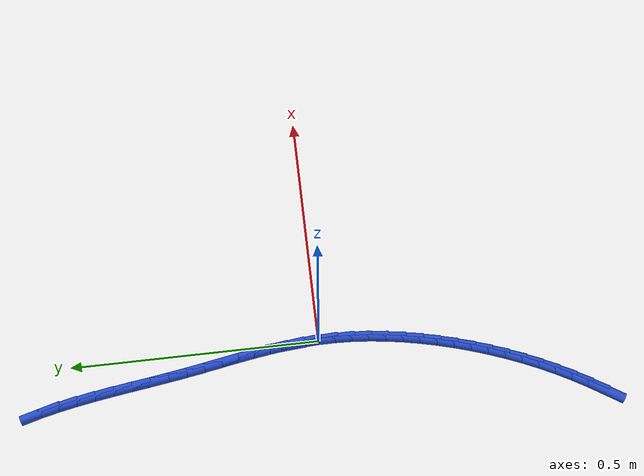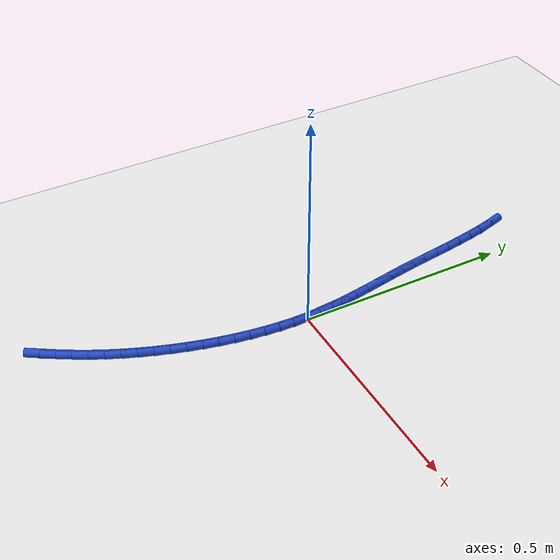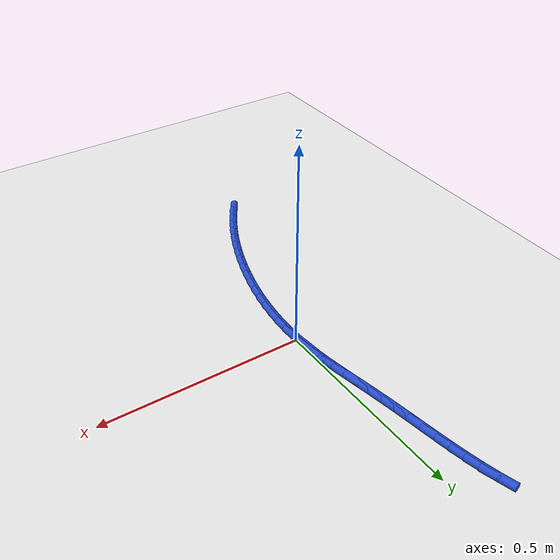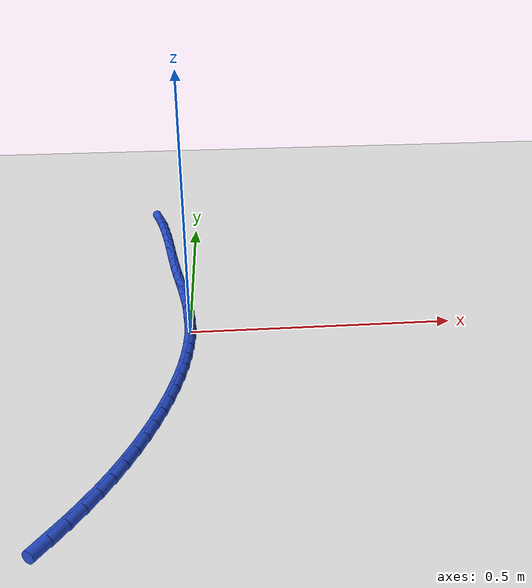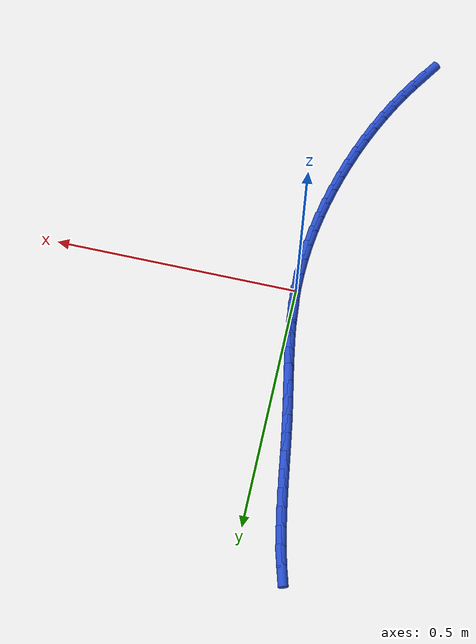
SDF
<sdf version="1.6">
 <world name="default">
  <model name="ground_plane">
   <static>1</static>
   <link name="link">
    <collision name="collision">
     <geometry><plane><normal>0 0 1</normal><size>100 100</size></plane></geometry>
     <surface><friction><ode><mu>100</mu><mu2>50</mu2></ode></friction></surface>
    </collision>
    <visual name="visual">
     <cast_shadows>0</cast_shadows>
     <geometry><plane><normal>0 0 1</normal><size>100 100</size></plane></geometry>
     <material>
      <script><uri>file://media/materials/scripts/gazebo.material</uri><name>Gazebo/WhiteGlow</name></script>
     </material>
    </visual>
   </link>
  </model>
  <model name="line">
   <link name="link_0">
    <pose>-1.0408340855860843e-17 1.3877787807814457e-17 0.01 0 1.57 -1.5174585784094434</pose>
    <collision name="collision">
     <geometry><cylinder><radius>0.01</radius><length>0.08</length></cylinder></geometry>
    </collision>
    <visual name="visual">
     <material>
      <script><name>Gazebo/Blue</name><uri>file://media/materials/scripts/gazebo.material</uri></script>
     </material>
     <geometry><cylinder><radius>0.01</radius><length>0.08</length></cylinder></geometry>
    </visual>
   </link>
   <link name="link_1">
    <pose>-0.001797787003894169 0.03367374672130932 0.01 0 1.57 -1.4763028641299707</pose>
    <collision name="collision">
     <geometry><cylinder><radius>0.01</radius><length>0.08</length></cylinder></geometry>
    </collision>
    <visual name="visual">
     <material>
      <script><name>Gazebo/Blue</name><uri>file://media/materials/scripts/gazebo.material</uri></script>
     </material>
     <geometry><cylinder><radius>0.01</radius><length>0.08</length></cylinder></geometry>
    </visual>
   </link>
   <link name="link_2">
    <pose>-0.004974677567229655 0.06719383731850173 0.01 0 1.57 -1.4429940075132388</pose>
    <collision name="collision">
     <geometry><cylinder><radius>0.01</radius><length>0.08</length></cylinder></geometry>
    </collision>
    <visual name="visual">
     <material>
      <script><name>Gazebo/Blue</name><uri>file://media/materials/scripts/gazebo.material</uri></script>
     </material>
     <geometry><cylinder><radius>0.01</radius><length>0.08</length></cylinder></geometry>
    </visual>
   </link>
   <link name="link_3">
    <pose>-0.009276868182909811 0.10067321323386505 0.01 0 1.57 -1.4178004778522653</pose>
    <collision name="collision">
     <geometry><cylinder><radius>0.01</radius><length>0.08</length></cylinder></geometry>
    </collision>
    <visual name="visual">
     <material>
      <script><name>Gazebo/Blue</name><uri>file://media/materials/scripts/gazebo.material</uri></script>
     </material>
     <geometry><cylinder><radius>0.01</radius><length>0.08</length></cylinder></geometry>
    </visual>
   </link>
   <link name="link_4">
    <pose>-0.014450555343837983 0.13422481590968718 0.01 0 1.57 -1.4007896088642688</pose>
    <collision name="collision">
     <geometry><cylinder><radius>0.01</radius><length>0.08</length></cylinder></geometry>
    </collision>
    <visual name="visual">
     <material>
      <script><name>Gazebo/Blue</name><uri>file://media/materials/scripts/gazebo.material</uri></script>
     </material>
     <geometry><cylinder><radius>0.01</radius><length>0.08</length></cylinder></geometry>
    </visual>
   </link>
   <link name="link_5">
    <pose>-0.020241935542917505 0.16796158678825582 0.01 0 1.57 -1.3918784342253012</pose>
    <collision name="collision">
     <geometry><cylinder><radius>0.01</radius><length>0.08</length></cylinder></geometry>
    </collision>
    <visual name="visual">
     <material>
      <script><name>Gazebo/Blue</name><uri>file://media/materials/scripts/gazebo.material</uri></script>
     </material>
     <geometry><cylinder><radius>0.01</radius><length>0.08</length></cylinder></geometry>
    </visual>
   </link>
   <link name="link_6">
    <pose>-0.026397205273051724 0.20199646731185883 0.01 0 1.57 -1.3908737222804748</pose>
    <collision name="collision">
     <geometry><cylinder><radius>0.01</radius><length>0.08</length></cylinder></geometry>
    </collision>
    <visual name="visual">
     <material>
      <script><name>Gazebo/Blue</name><uri>file://media/materials/scripts/gazebo.material</uri></script>
     </material>
     <geometry><cylinder><radius>0.01</radius><length>0.08</length></cylinder></geometry>
    </visual>
   </link>
   <link name="link_7">
    <pose>-0.03266256102714396 0.23644239892278401 0.01 0 1.57 -1.3974979000075152</pose>
    <collision name="collision">
     <geometry><cylinder><radius>0.01</radius><length>0.08</length></cylinder></geometry>
    </collision>
    <visual name="visual">
     <material>
      <script><name>Gazebo/Blue</name><uri>file://media/materials/scripts/gazebo.material</uri></script>
     </material>
     <geometry><cylinder><radius>0.01</radius><length>0.08</length></cylinder></geometry>
    </visual>
   </link>
   <link name="link_8">
    <pose>-0.03878419929809761 0.2714123230633193 0.01 0 1.57 -1.410540140383066</pose>
    <collision name="collision">
     <geometry><cylinder><radius>0.01</radius><length>0.08</length></cylinder></geometry>
    </collision>
    <visual name="visual">
     <material>
      <script><name>Gazebo/Blue</name><uri>file://media/materials/scripts/gazebo.material</uri></script>
     </material>
     <geometry><cylinder><radius>0.01</radius><length>0.08</length></cylinder></geometry>
    </visual>
   </link>
   <link name="link_9">
    <pose>-0.044536545742731845 0.30699920457989194 0.01 0 1.57 -1.4211945639011299</pose>
    <collision name="collision">
     <geometry><cylinder><radius>0.01</radius><length>0.08</length></cylinder></geometry>
    </collision>
    <visual name="visual">
     <material>
      <script><name>Gazebo/Blue</name><uri>file://media/materials/scripts/gazebo.material</uri></script>
     </material>
     <geometry><cylinder><radius>0.01</radius><length>0.08</length></cylinder></geometry>
    </visual>
   </link>
   <link name="link_10">
    <pose>-0.049977274686973584 0.34309556511035183 0.01 0 1.57 -1.4247883033095197</pose>
    <collision name="collision">
     <geometry><cylinder><radius>0.01</radius><length>0.08</length></cylinder></geometry>
    </collision>
    <visual name="visual">
     <material>
      <script><name>Gazebo/Blue</name><uri>file://media/materials/scripts/gazebo.material</uri></script>
     </material>
     <geometry><cylinder><radius>0.01</radius><length>0.08</length></cylinder></geometry>
    </visual>
   </link>
   <link name="link_11">
    <pose>-0.05532751325703738 0.3794782575981681 0.01 0 1.57 -1.421472245109235</pose>
    <collision name="collision">
     <geometry><cylinder><radius>0.01</radius><length>0.08</length></cylinder></geometry>
    </collision>
    <visual name="visual">
     <material>
      <script><name>Gazebo/Blue</name><uri>file://media/materials/scripts/gazebo.material</uri></script>
     </material>
     <geometry><cylinder><radius>0.01</radius><length>0.08</length></cylinder></geometry>
    </visual>
   </link>
   <link name="link_12">
    <pose>-0.06081036401106876 0.4159227370564483 0.01 0 1.57 -1.4112411787081625</pose>
    <collision name="collision">
     <geometry><cylinder><radius>0.01</radius><length>0.08</length></cylinder></geometry>
    </collision>
    <visual name="visual">
     <material>
      <script><name>Gazebo/Blue</name><uri>file://media/materials/scripts/gazebo.material</uri></script>
     </material>
     <geometry><cylinder><radius>0.01</radius><length>0.08</length></cylinder></geometry>
    </visual>
   </link>
   <link name="link_13">
    <pose>-0.06664892950721323 0.4522044584982996 0.01 0 1.57 -1.3938805285159337</pose>
    <collision name="collision">
     <geometry><cylinder><radius>0.01</radius><length>0.08</length></cylinder></geometry>
    </collision>
    <visual name="visual">
     <material>
      <script><name>Gazebo/Blue</name><uri>file://media/materials/scripts/gazebo.material</uri></script>
     </material>
     <geometry><cylinder><radius>0.01</radius><length>0.08</length></cylinder></geometry>
    </visual>
   </link>
   <link name="link_14">
    <pose>-0.07306631230361622 0.48809887693682935 0.01 0 1.57 -1.36896833246314</pose>
    <collision name="collision">
     <geometry><cylinder><radius>0.01</radius><length>0.08</length></cylinder></geometry>
    </collision>
    <visual name="visual">
     <material>
      <script><name>Gazebo/Blue</name><uri>file://media/materials/scripts/gazebo.material</uri></script>
     </material>
     <geometry><cylinder><radius>0.01</radius><length>0.08</length></cylinder></geometry>
    </visual>
   </link>
   <link name="link_15">
    <pose>-0.08028561495842329 0.5233814473851446 0.01 0 1.57 -1.3358761266931571</pose>
    <collision name="collision">
     <geometry><cylinder><radius>0.01</radius><length>0.08</length></cylinder></geometry>
    </collision>
    <visual name="visual">
     <material>
      <script><name>Gazebo/Blue</name><uri>file://media/materials/scripts/gazebo.material</uri></script>
     </material>
     <geometry><cylinder><radius>0.01</radius><length>0.08</length></cylinder></geometry>
    </visual>
   </link>
   <link name="link_16">
    <pose>-0.08852994002977994 0.5578276248563532 0.01 0 1.57 -1.29377625659038</pose>
    <collision name="collision">
     <geometry><cylinder><radius>0.01</radius><length>0.08</length></cylinder></geometry>
    </collision>
    <visual name="visual">
     <material>
      <script><name>Gazebo/Blue</name><uri>file://media/materials/scripts/gazebo.material</uri></script>
     </material>
     <geometry><cylinder><radius>0.01</radius><length>0.08</length></cylinder></geometry>
    </visual>
   </link>
   <link name="link_203">
    <pose>-0.16663906993771754 -0.5525804811696915 0.01 0 1.57 0.9976817822204805</pose>
    <collision name="collision">
     <geometry><cylinder><radius>0.01</radius><length>0.08</length></cylinder></geometry>
    </collision>
    <visual name="visual">
     <material>
      <script><name>Gazebo/Blue</name><uri>file://media/materials/scripts/gazebo.material</uri></script>
     </material>
     <geometry><cylinder><radius>0.01</radius><length>0.08</length></cylinder></geometry>
    </visual>
   </link>
   <link name="link_204">
    <pose>-0.14800532177848852 -0.5237075782231698 0.01 0 1.57 1.0350015585338634</pose>
    <collision name="collision">
     <geometry><cylinder><radius>0.01</radius><length>0.08</length></cylinder></geometry>
    </collision>
    <visual name="visual">
     <material>
      <script><name>Gazebo/Blue</name><uri>file://media/materials/scripts/gazebo.material</uri></script>
     </material>
     <geometry><cylinder><radius>0.01</radius><length>0.08</length></cylinder></geometry>
    </visual>
   </link>
   <link name="link_205">
    <pose>-0.13047504934204793 -0.49418180113918503 0.01 0 1.57 1.0715680597547337</pose>
    <collision name="collision">
     <geometry><cylinder><radius>0.01</radius><length>0.08</length></cylinder></geometry>
    </collision>
    <visual name="visual">
     <material>
      <script><name>Gazebo/Blue</name><uri>file://media/materials/scripts/gazebo.material</uri></script>
     </material>
     <geometry><cylinder><radius>0.01</radius><length>0.08</length></cylinder></geometry>
    </visual>
   </link>
   <link name="link_206">
    <pose>-0.11403668265813886 -0.4640363017483304 0.01 0 1.57 1.107338126543413</pose>
    <collision name="collision">
     <geometry><cylinder><radius>0.01</radius><length>0.08</length></cylinder></geometry>
    </collision>
    <visual name="visual">
     <material>
      <script><name>Gazebo/Blue</name><uri>file://media/materials/scripts/gazebo.material</uri></script>
     </material>
     <geometry><cylinder><radius>0.01</radius><length>0.08</length></cylinder></geometry>
    </visual>
   </link>
   <link name="link_207">
    <pose>-0.09867798556820631 -0.43330435669813183 0.01 0 1.57 1.1422960163218818</pose>
    <collision name="collision">
     <geometry><cylinder><radius>0.01</radius><length>0.08</length></cylinder></geometry>
    </collision>
    <visual name="visual">
     <material>
      <script><name>Gazebo/Blue</name><uri>file://media/materials/scripts/gazebo.material</uri></script>
     </material>
     <geometry><cylinder><radius>0.01</radius><length>0.08</length></cylinder></geometry>
    </visual>
   </link>
   <link name="link_208">
    <pose>-0.08438672191369638 -0.4020192426361178 0.01 0 1.57 1.176434457301541</pose>
    <collision name="collision">
     <geometry><cylinder><radius>0.01</radius><length>0.08</length></cylinder></geometry>
    </collision>
    <visual name="visual">
     <material>
      <script><name>Gazebo/Blue</name><uri>file://media/materials/scripts/gazebo.material</uri></script>
     </material>
     <geometry><cylinder><radius>0.01</radius><length>0.08</length></cylinder></geometry>
    </visual>
   </link>
   <link name="link_209">
    <pose>-0.07115065553605401 -0.3702142362098144 0.01 0 1.57 1.209753881122137</pose>
    <collision name="collision">
     <geometry><cylinder><radius>0.01</radius><length>0.08</length></cylinder></geometry>
    </collision>
    <visual name="visual">
     <material>
      <script><name>Gazebo/Blue</name><uri>file://media/materials/scripts/gazebo.material</uri></script>
     </material>
     <geometry><cylinder><radius>0.01</radius><length>0.08</length></cylinder></geometry>
    </visual>
   </link>
   <link name="link_210">
    <pose>-0.0589575502767245 -0.3379226140667483 0.01 0 1.57 1.2422616146099503</pose>
    <collision name="collision">
     <geometry><cylinder><radius>0.01</radius><length>0.08</length></cylinder></geometry>
    </collision>
    <visual name="visual">
     <material>
      <script><name>Gazebo/Blue</name><uri>file://media/materials/scripts/gazebo.material</uri></script>
     </material>
     <geometry><cylinder><radius>0.01</radius><length>0.08</length></cylinder></geometry>
    </visual>
   </link>
   <link name="link_211">
    <pose>-0.04779516997715319 -0.3051776528544462 0.01 0 1.57 1.273979412414676</pose>
    <collision name="collision">
     <geometry><cylinder><radius>0.01</radius><length>0.08</length></cylinder></geometry>
    </collision>
    <visual name="visual">
     <material>
      <script><name>Gazebo/Blue</name><uri>file://media/materials/scripts/gazebo.material</uri></script>
     </material>
     <geometry><cylinder><radius>0.01</radius><length>0.08</length></cylinder></geometry>
    </visual>
   </link>
   <link name="link_212">
    <pose>-0.03765164042457027 -0.2720128226312791 0.01 0 1.57 1.3056372070995963</pose>
    <collision name="collision">
     <geometry><cylinder><radius>0.01</radius><length>0.08</length></cylinder></geometry>
    </collision>
    <visual name="visual">
     <material>
      <script><name>Gazebo/Blue</name><uri>file://media/materials/scripts/gazebo.material</uri></script>
     </material>
     <geometry><cylinder><radius>0.01</radius><length>0.08</length></cylinder></geometry>
    </visual>
   </link>
   <link name="link_213">
    <pose>-0.028545035819610397 -0.23847759681351743 0.01 0 1.57 1.3385832961968693</pose>
    <collision name="collision">
     <geometry><cylinder><radius>0.01</radius><length>0.08</length></cylinder></geometry>
    </collision>
    <visual name="visual">
     <material>
      <script><name>Gazebo/Blue</name><uri>file://media/materials/scripts/gazebo.material</uri></script>
     </material>
     <geometry><cylinder><radius>0.01</radius><length>0.08</length></cylinder></geometry>
    </visual>
   </link>
   <link name="link_214">
    <pose>-0.02054532820879077 -0.20464918116473463 0.01 0 1.57 1.3731369876630868</pose>
    <collision name="collision">
     <geometry><cylinder><radius>0.01</radius><length>0.08</length></cylinder></geometry>
    </collision>
    <visual name="visual">
     <material>
      <script><name>Gazebo/Blue</name><uri>file://media/materials/scripts/gazebo.material</uri></script>
     </material>
     <geometry><cylinder><radius>0.01</radius><length>0.08</length></cylinder></geometry>
    </visual>
   </link>
   <link name="link_215">
    <pose>-0.013727661888168213 -0.1706075453131345 0.01 0 1.57 1.4095031109939815</pose>
    <collision name="collision">
     <geometry><cylinder><radius>0.01</radius><length>0.08</length></cylinder></geometry>
    </collision>
    <visual name="visual">
     <material>
      <script><name>Gazebo/Blue</name><uri>file://media/materials/scripts/gazebo.material</uri></script>
     </material>
     <geometry><cylinder><radius>0.01</radius><length>0.08</length></cylinder></geometry>
    </visual>
   </link>
   <link name="link_216">
    <pose>-0.008167181153799413 -0.13643265888691972 0.01 0 1.57 1.447890550793453</pose>
    <collision name="collision">
     <geometry><cylinder><radius>0.01</radius><length>0.08</length></cylinder></geometry>
    </collision>
    <visual name="visual">
     <material>
      <script><name>Gazebo/Blue</name><uri>file://media/materials/scripts/gazebo.material</uri></script>
     </material>
     <geometry><cylinder><radius>0.01</radius><length>0.08</length></cylinder></geometry>
    </visual>
   </link>
   <link name="link_217">
    <pose>-0.003939030301741458 -0.1022044915142958 0.01 0 1.57 1.4885101909055085</pose>
    <collision name="collision">
     <geometry><cylinder><radius>0.01</radius><length>0.08</length></cylinder></geometry>
    </collision>
    <visual name="visual">
     <material>
      <script><name>Gazebo/Blue</name><uri>file://media/materials/scripts/gazebo.material</uri></script>
     </material>
     <geometry><cylinder><radius>0.01</radius><length>0.08</length></cylinder></geometry>
    </visual>
   </link>
   <link name="link_218">
    <pose>-0.001118353628051022 -0.0680030128234655 0.01 0 1.57 1.5315712519717652</pose>
    <collision name="collision">
     <geometry><cylinder><radius>0.01</radius><length>0.08</length></cylinder></geometry>
    </collision>
    <visual name="visual">
     <material>
      <script><name>Gazebo/Blue</name><uri>file://media/materials/scripts/gazebo.material</uri></script>
     </material>
     <geometry><cylinder><radius>0.01</radius><length>0.08</length></cylinder></geometry>
    </visual>
   </link>
   <link name="link_219">
    <pose>0.00021970457121507636 -0.033908192442632545 0.01 0 1.57 -1.5643170225064857</pose>
    <collision name="collision">
     <geometry><cylinder><radius>0.01</radius><length>0.08</length></cylinder></geometry>
    </collision>
    <visual name="visual">
     <material>
      <script><name>Gazebo/Blue</name><uri>file://media/materials/scripts/gazebo.material</uri></script>
     </material>
     <geometry><cylinder><radius>0.01</radius><length>0.08</length></cylinder></geometry>
    </visual>
   </link>
   <link name="link_220">
    <pose>-3.469446951953614e-18 2.0816681711721685e-16 0.01 0 1.57 -1.5157828145252592</pose>
    <collision name="collision">
     <geometry><cylinder><radius>0.01</radius><length>0.08</length></cylinder></geometry>
    </collision>
    <visual name="visual">
     <material>
      <script><name>Gazebo/Blue</name><uri>file://media/materials/scripts/gazebo.material</uri></script>
     </material>
     <geometry><cylinder><radius>0.01</radius><length>0.08</length></cylinder></geometry>
    </visual>
   </link>
   <link name="link_221">
    <pose>-0.0018526116377530003 0.033641594876226595 0.01 0 1.57 -1.4642584593994714</pose>
    <collision name="collision">
     <geometry><cylinder><radius>0.01</radius><length>0.08</length></cylinder></geometry>
    </collision>
    <visual name="visual">
     <material>
      <script><name>Gazebo/Blue</name><uri>file://media/materials/scripts/gazebo.material</uri></script>
     </material>
     <geometry><cylinder><radius>0.01</radius><length>0.08</length></cylinder></geometry>
    </visual>
   </link>
   <link name="link_222">
    <pose>-0.00541327463810092 0.06693662255784623 0.01 0 1.57 -1.4901003014196488</pose>
    <collision name="collision">
     <geometry><cylinder><radius>0.01</radius><length>0.08</length></cylinder></geometry>
    </collision>
    <visual name="visual">
     <material>
      <script><name>Gazebo/Blue</name><uri>file://media/materials/scripts/gazebo.material</uri></script>
     </material>
     <geometry><cylinder><radius>0.01</radius><length>0.08</length></cylinder></geometry>
    </visual>
   </link>
  </model>
 </world>
</sdf>
